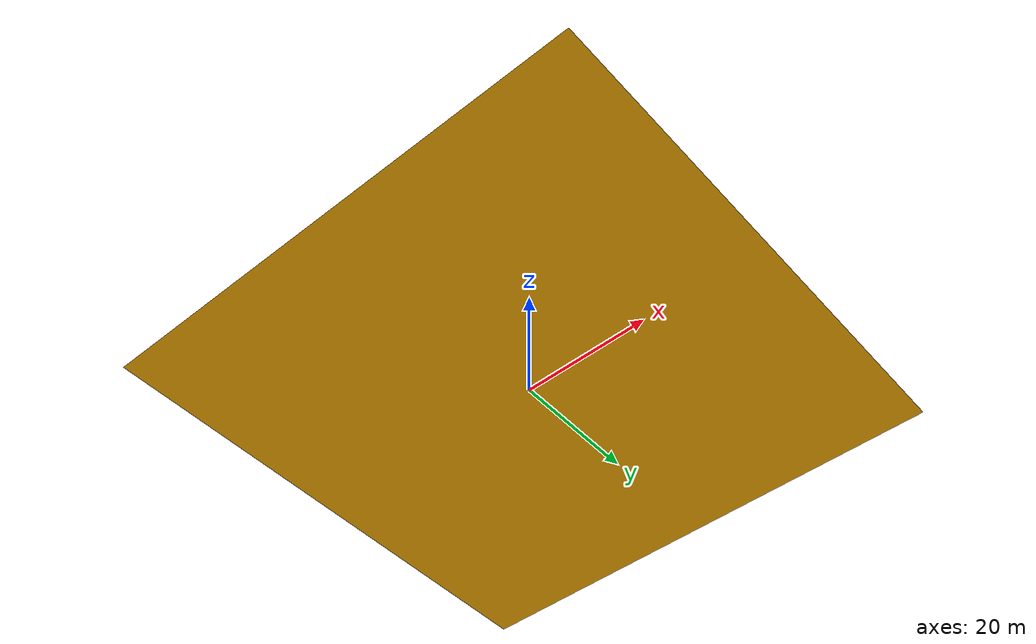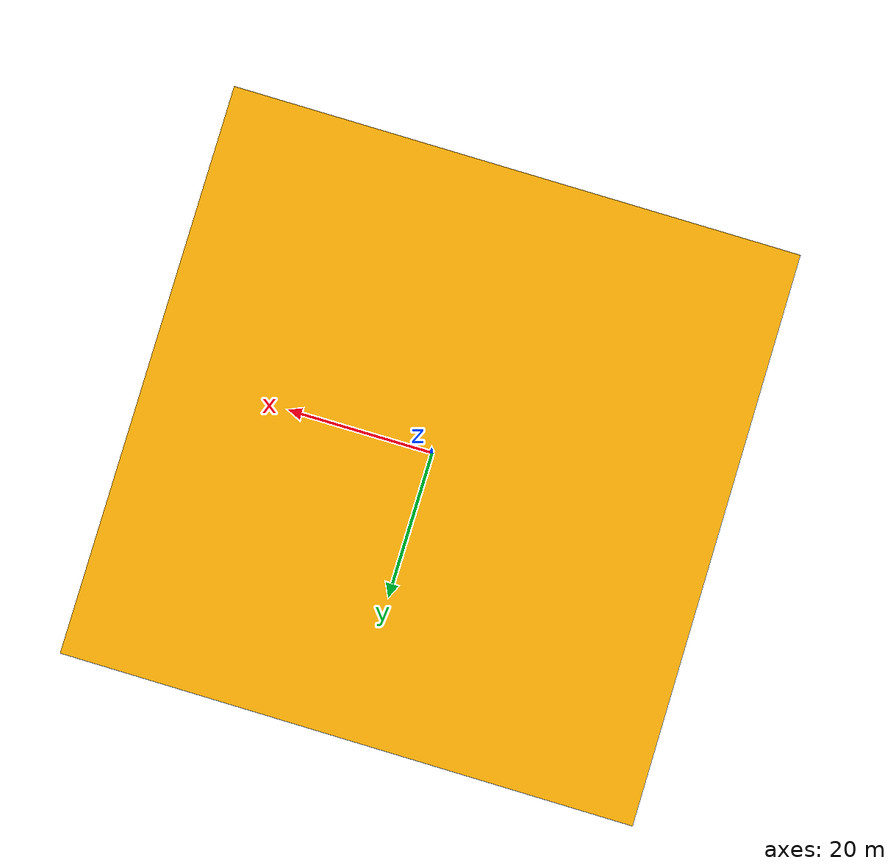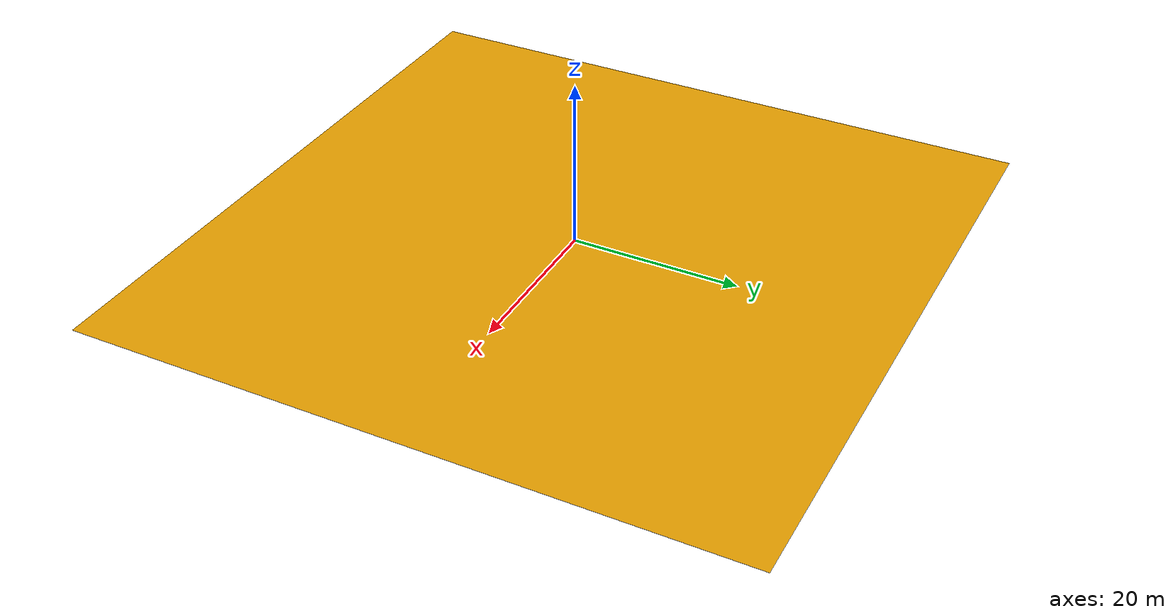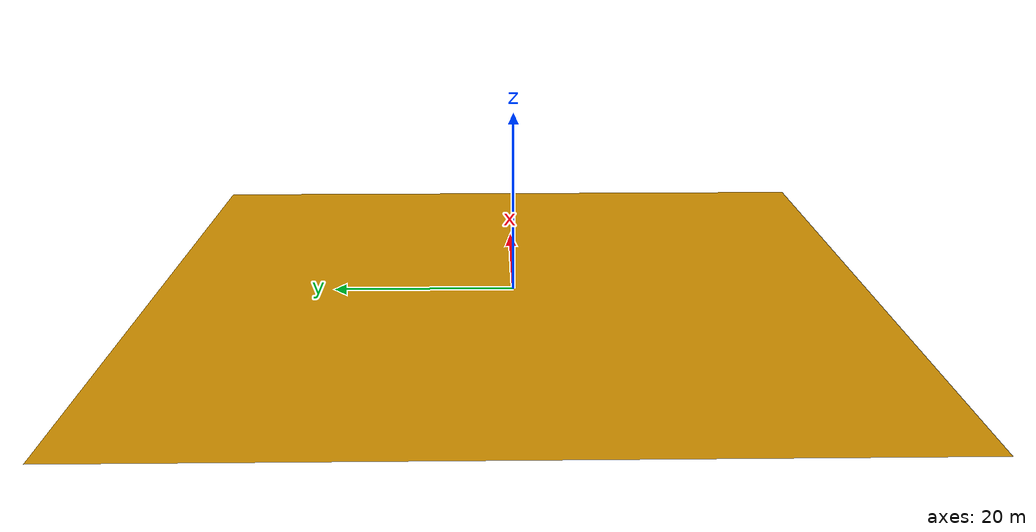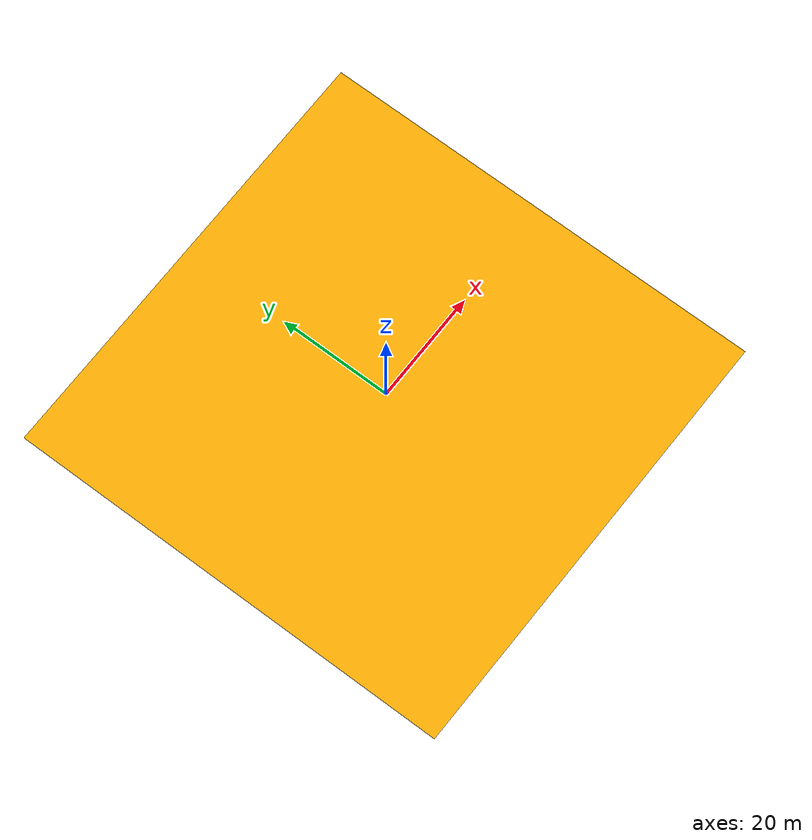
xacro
<?xml version="1.0"?>
<robot name="wooden_floor" xmlns:xacro="http://www.ros.org/wiki/xacro">
  <link name="wooden_floor_link">
    <inertial>
      <origin xyz="0 0 0" rpy="0 0 0"/>
      <mass value="1"/>
      <inertia ixx="1" ixy="0" ixz="0" iyy="1" iyz="0" izz="1"/>
    </inertial>
    <visual>
      <origin xyz="0 0 0" rpy="0 0 0"/>
      <geometry>
        <mesh filename="package://solver_description/meshes/piso.dae"/>
      </geometry>
    </visual>
    <collision>
      <origin xyz="0 0 0" rpy="0 0 0"/>
      <geometry>
        <mesh filename="package://solver_description/meshes/piso.dae"/>
      </geometry>
      <surface>
        <friction>
          <ode>
            <mu>100</mu>
            <mu2>50</mu2>
          </ode>
        </friction>
      </surface>
    </collision>
  </link>
  <gazebo> <static>true</static></gazebo>
</robot>
